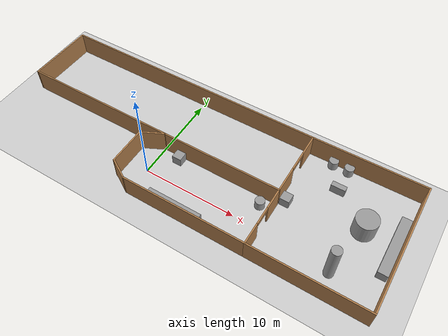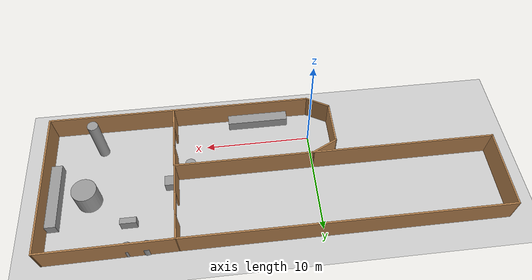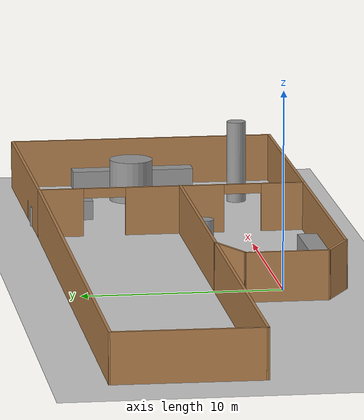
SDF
<sdf version="1.7">
 <world name="default">
  <light name="sun" type="directional">
   <pose>0 0 10 0 -0 0</pose>
   <diffuse>0.8 0.8 0.8 1</diffuse>
   <specular>0.2 0.2 0.2 1</specular>
   <attenuation>
    <range>1000</range>
    <constant>0.9</constant>
    <linear>0.01</linear>
    <quadratic>0.001</quadratic>
   </attenuation>
   <direction>-0.5 0.1 -0.9</direction>
   <spot><inner_angle>0</inner_angle><outer_angle>0</outer_angle><falloff>0</falloff></spot>
  </light>
  <model name="ground_plane">
   <static>1</static>
   <link name="link">
    <collision name="collision">
     <geometry><plane><normal>0 0 1</normal><size>100 100</size></plane></geometry>
     <surface>
      <contact><collide_bitmask>65535</collide_bitmask></contact>
      <friction><ode><mu>100</mu><mu2>50</mu2></ode></friction>
     </surface>
    </collision>
    <visual name="visual">
     <cast_shadows>0</cast_shadows>
     <geometry><plane><normal>0 0 1</normal><size>100 100</size></plane></geometry>
     <material>
      <script><uri>file://media/materials/scripts/gazebo.material</uri><name>Gazebo/Grey</name></script>
     </material>
    </visual>
   </link>
  </model>
  <gravity>0 0 -9.8</gravity>
  <magnetic_field>6e-06 2.3e-05 -4.2e-05</magnetic_field>
  <atmosphere type="adiabatic"/>
  <physics type="ode">
   <max_step_size>0.001</max_step_size>
   <real_time_factor>1</real_time_factor>
   <real_time_update_rate>1000</real_time_update_rate>
  </physics>
  <scene><ambient>0.4 0.4 0.4 1</ambient><background>0.7 0.7 0.7 1</background><shadows>1</shadows></scene>
  <audio><device>default</device></audio>
  <spherical_coordinates>
   <surface_model>EARTH_WGS84</surface_model>
   <latitude_deg>0</latitude_deg>
   <longitude_deg>0</longitude_deg>
   <elevation>0</elevation>
   <heading_deg>0</heading_deg>
  </spherical_coordinates>
  <model name="test_building_2">
   <pose>3.8359 3.82246 0 0 -0 0</pose>
   <link name="Wall_16">
    <collision name="Wall_16_Collision">
     <geometry><box><size>4.25 0.15 2.5</size></box></geometry>
     <pose>0 0 1.25 0 -0 0</pose>
    </collision>
    <visual name="Wall_16_Visual">
     <pose>0 0 1.25 0 -0 0</pose>
     <geometry><box><size>4.25 0.15 2.5</size></box></geometry>
     <material>
      <script><uri>file://media/materials/scripts/gazebo.material</uri><name>Gazebo/Wood</name></script>
      <ambient>1 1 1 1</ambient>
     </material>
     <meta><layer>0</layer></meta>
    </visual>
    <pose>-6.08502 -3.68664 0 0 -0 -1.5708</pose>
   </link>
   <link name="Wall_17">
    <collision name="Wall_17_Collision">
     <geometry><box><size>2.5 0.15 2.5</size></box></geometry>
     <pose>0 0 1.25 0 -0 0</pose>
    </collision>
    <visual name="Wall_17_Visual">
     <pose>0 0 1.25 0 -0 0</pose>
     <geometry><box><size>2.5 0.15 2.5</size></box></geometry>
     <material>
      <script><uri>file://media/materials/scripts/gazebo.material</uri><name>Gazebo/Wood</name></script>
      <ambient>1 1 1 1</ambient>
     </material>
     <meta><layer>0</layer></meta>
    </visual>
    <pose>-5.06743 -6.32414 0 0 -0 -0.523599</pose>
   </link>
   <link name="Wall_18">
    <collision name="Wall_18_Collision">
     <geometry><box><size>13.25 0.15 2.5</size></box></geometry>
     <pose>0 0 1.25 0 -0 0</pose>
    </collision>
    <visual name="Wall_18_Visual">
     <pose>0 0 1.25 0 -0 0</pose>
     <geometry><box><size>13.25 0.15 2.5</size></box></geometry>
     <material>
      <script><uri>file://media/materials/scripts/gazebo.material</uri><name>Gazebo/Wood</name></script>
      <ambient>1 1 1 1</ambient>
     </material>
     <meta><layer>0</layer></meta>
    </visual>
    <pose>2.50014 -6.91164 0 0 -0 0</pose>
   </link>
   <link name="Wall_19">
    <pose>9.05015 -3.70166 0 0 -0 1.5708</pose>
    <visual name="Wall_19_Visual_0">
     <pose>-2.12882 0 1.25 0 -0 0</pose>
     <geometry><box><size>2.31231 0.15 2.5</size></box></geometry>
     <material>
      <script><uri>file://media/materials/scripts/gazebo.material</uri><name>Gazebo/Wood</name></script>
      <ambient>1 1 1 1</ambient>
     </material>
     <meta><layer>0</layer></meta>
    </visual>
    <collision name="Wall_19_Collision_0">
     <geometry><box><size>2.31231 0.15 2.5</size></box></geometry>
     <pose>-2.12882 0 1.25 0 -0 0</pose>
    </collision>
    <visual name="Wall_19_Visual_1">
     <pose>2.12062 0 1.25 0 -0 0</pose>
     <geometry><box><size>2.32871 0.15 2.5</size></box></geometry>
     <material>
      <script><uri>file://media/materials/scripts/gazebo.material</uri><name>Gazebo/Wood</name></script>
      <ambient>1 1 1 1</ambient>
     </material>
     <meta><layer>0</layer></meta>
    </visual>
    <collision name="Wall_19_Collision_1">
     <geometry><box><size>2.32871 0.15 2.5</size></box></geometry>
     <pose>2.12062 0 1.25 0 -0 0</pose>
    </collision>
    <visual name="Wall_19_Visual_2">
     <pose>-0.0082 0 2.25 0 -0 0</pose>
     <geometry><box><size>1.92894 0.15 0.5</size></box></geometry>
     <material>
      <script><uri>file://media/materials/scripts/gazebo.material</uri><name>Gazebo/Wood</name></script>
      <ambient>1 1 1 1</ambient>
     </material>
     <meta><layer>0</layer></meta>
    </visual>
    <collision name="Wall_19_Collision_2">
     <geometry><box><size>1.92894 0.15 0.5</size></box></geometry>
     <pose>-0.0082 0 2.25 0 -0 0</pose>
    </collision>
   </link>
   <link name="Wall_20">
    <collision name="Wall_20_Collision">
     <geometry><box><size>13 0.15 2.5</size></box></geometry>
     <pose>0 0 1.25 0 -0 0</pose>
    </collision>
    <visual name="Wall_20_Visual">
     <pose>0 0 1.25 0 -0 0</pose>
     <geometry><box><size>13 0.15 2.5</size></box></geometry>
     <material>
      <script><uri>file://media/materials/scripts/gazebo.material</uri><name>Gazebo/Wood</name></script>
      <ambient>1 1 1 1</ambient>
     </material>
     <meta><layer>0</layer></meta>
    </visual>
    <pose>2.62514 -0.491676 0 0 -0 3.14159</pose>
   </link>
   <link name="Wall_21">
    <collision name="Wall_21_Collision">
     <geometry><box><size>2.70595 0.15 2.5</size></box></geometry>
     <pose>0 0 1.25 0 -0 0</pose>
    </collision>
    <visual name="Wall_21_Visual">
     <pose>0 0 1.25 0 -0 0</pose>
     <geometry><box><size>2.70595 0.15 2.5</size></box></geometry>
     <material>
      <script><uri>file://media/materials/scripts/gazebo.material</uri><name>Gazebo/Wood</name></script>
      <ambient>1 1 1 1</ambient>
     </material>
     <meta><layer>0</layer></meta>
    </visual>
    <pose>-4.94243 -1.06416 0 0 -0 -2.67711</pose>
   </link>
   <link name="Wall_23">
    <collision name="Wall_23_Collision">
     <geometry><box><size>12 0.15 2.5</size></box></geometry>
     <pose>0 0 1.25 0 -0 0</pose>
    </collision>
    <visual name="Wall_23_Visual">
     <pose>0 0 1.25 0 -0 0</pose>
     <geometry><box><size>12 0.15 2.5</size></box></geometry>
     <material>
      <script><uri>file://media/materials/scripts/gazebo.material</uri><name>Gazebo/Wood</name></script>
      <ambient>1 1 1 1</ambient>
     </material>
     <meta><layer>0</layer></meta>
    </visual>
    <pose>14.9751 -6.91164 0 0 -0 0</pose>
   </link>
   <link name="Wall_24">
    <collision name="Wall_24_Collision">
     <geometry><box><size>14 0.15 2.5</size></box></geometry>
     <pose>0 0 1.25 0 -0 0</pose>
    </collision>
    <visual name="Wall_24_Visual">
     <pose>0 0 1.25 0 -0 0</pose>
     <geometry><box><size>14 0.15 2.5</size></box></geometry>
     <material>
      <script><uri>file://media/materials/scripts/gazebo.material</uri><name>Gazebo/Wood</name></script>
      <ambient>1 1 1 1</ambient>
     </material>
     <meta><layer>0</layer></meta>
    </visual>
    <pose>20.9001 0.013364 0 0 -0 1.5708</pose>
   </link>
   <link name="Wall_25">
    <collision name="Wall_25_Collision">
     <geometry><box><size>12.0006 0.15 2.5</size></box></geometry>
     <pose>0 0 1.25 0 -0 0</pose>
    </collision>
    <visual name="Wall_25_Visual">
     <pose>0 0 1.25 0 -0 0</pose>
     <geometry><box><size>12.0006 0.15 2.5</size></box></geometry>
     <material>
      <script><uri>file://media/materials/scripts/gazebo.material</uri><name>Gazebo/Wood</name></script>
      <ambient>1 1 1 1</ambient>
     </material>
     <meta><layer>0</layer></meta>
    </visual>
    <pose>14.9751 6.88085 0 0 -0 -3.13189</pose>
   </link>
   <link name="Wall_26">
    <pose>9.05015 3.14834 0 0 -0 -1.5708</pose>
    <visual name="Wall_26_Visual_0">
     <pose>-2.56985 0 1.25 0 -0 0</pose>
     <geometry><box><size>2.36031 0.15 2.5</size></box></geometry>
     <material>
      <script><uri>file://media/materials/scripts/gazebo.material</uri><name>Gazebo/Wood</name></script>
      <ambient>1 1 1 1</ambient>
     </material>
     <meta><layer>0</layer></meta>
    </visual>
    <collision name="Wall_26_Collision_0">
     <geometry><box><size>2.36031 0.15 2.5</size></box></geometry>
     <pose>-2.56985 0 1.25 0 -0 0</pose>
    </collision>
    <visual name="Wall_26_Visual_1">
     <pose>2.26654 0 1.25 0 -0 0</pose>
     <geometry><box><size>2.96692 0.15 2.5</size></box></geometry>
     <material>
      <script><uri>file://media/materials/scripts/gazebo.material</uri><name>Gazebo/Wood</name></script>
      <ambient>1 1 1 1</ambient>
     </material>
     <meta><layer>0</layer></meta>
    </visual>
    <collision name="Wall_26_Collision_1">
     <geometry><box><size>2.96692 0.15 2.5</size></box></geometry>
     <pose>2.26654 0 1.25 0 -0 0</pose>
    </collision>
    <visual name="Wall_26_Visual_2">
     <pose>-0.303308 0 2.25 0 -0 0</pose>
     <geometry><box><size>2.17277 0.15 0.5</size></box></geometry>
     <material>
      <script><uri>file://media/materials/scripts/gazebo.material</uri><name>Gazebo/Wood</name></script>
      <ambient>1 1 1 1</ambient>
     </material>
     <meta><layer>0</layer></meta>
    </visual>
    <collision name="Wall_26_Collision_2">
     <geometry><box><size>2.17277 0.15 0.5</size></box></geometry>
     <pose>-0.303308 0 2.25 0 -0 0</pose>
    </collision>
   </link>
   <link name="Wall_28">
    <collision name="Wall_28_Collision">
     <geometry><box><size>30 0.15 2.5</size></box></geometry>
     <pose>0 0 1.25 0 -0 0</pose>
    </collision>
    <visual name="Wall_28_Visual">
     <pose>0 0 1.25 0 -0 0</pose>
     <geometry><box><size>30 0.15 2.5</size></box></geometry>
     <material>
      <script><uri>file://media/materials/scripts/gazebo.material</uri><name>Gazebo/Wood</name></script>
      <ambient>1 1 1 1</ambient>
     </material>
     <meta><layer>0</layer></meta>
    </visual>
    <pose>-5.87485 6.82334 0 0 -0 3.14159</pose>
   </link>
   <link name="Wall_29">
    <collision name="Wall_29_Collision">
     <geometry><box><size>7.4657 0.15 2.5</size></box></geometry>
     <pose>0 0 1.25 0 -0 0</pose>
    </collision>
    <visual name="Wall_29_Visual">
     <pose>0 0 1.25 0 -0 0</pose>
     <geometry><box><size>7.4657 0.15 2.5</size></box></geometry>
     <material>
      <script><uri>file://media/materials/scripts/gazebo.material</uri><name>Gazebo/Wood</name></script>
      <ambient>1 1 1 1</ambient>
     </material>
     <meta><layer>0</layer></meta>
    </visual>
    <pose>-20.8499 3.16583 0 0 -0 -1.58447</pose>
   </link>
   <link name="Wall_31">
    <collision name="Wall_31_Collision">
     <geometry><box><size>17.25 0.15 2.5</size></box></geometry>
     <pose>0 0 1.25 0 -0 0</pose>
    </collision>
    <visual name="Wall_31_Visual">
     <pose>0 0 1.25 0 -0 0</pose>
     <geometry><box><size>17.25 0.15 2.5</size></box></geometry>
     <material>
      <script><uri>file://media/materials/scripts/gazebo.material</uri><name>Gazebo/Wood</name></script>
      <ambient>1 1 1 1</ambient>
     </material>
     <meta><layer>0</layer></meta>
    </visual>
    <pose>-12.3499 -0.491676 0 0 -0 3.14159</pose>
   </link>
   <static>1</static>
  </model>
  <model name="unit_box">
   <pose>2.03816 2.7558 0.499999 -2e-06 -0 -3e-06</pose>
   <link name="link">
    <inertial>
     <mass>1</mass>
     <inertia>
      <ixx>0.166667</ixx>
      <ixy>0</ixy>
      <ixz>0</ixz>
      <iyy>0.166667</iyy>
      <iyz>0</iyz>
      <izz>0.166667</izz>
     </inertia>
    </inertial>
    <collision name="collision"><geometry><box><size>1 1 1</size></box></geometry></collision>
    <visual name="visual">
     <geometry><box><size>1 1 1</size></box></geometry>
     <material>
      <script><name>Gazebo/Grey</name><uri>file://media/materials/scripts/gazebo.material</uri></script>
     </material>
    </visual>
   </link>
  </model>
  <model name="unit_box_0">
   <pose>4.7588 -2.43664 0.495823 0 0.001439 8.8e-05</pose>
   <link name="link">
    <inertial>
     <mass>1</mass>
     <inertia>
      <ixx>0.166667</ixx>
      <ixy>0</ixy>
      <ixz>0</ixz>
      <iyy>0.166667</iyy>
      <iyz>0</iyz>
      <izz>0.166667</izz>
     </inertia>
    </inertial>
    <collision name="collision"><geometry><box><size>5.80962 1 1</size></box></geometry></collision>
    <visual name="visual">
     <geometry><box><size>5.80962 1 1</size></box></geometry>
     <material>
      <script><name>Gazebo/Grey</name><uri>file://media/materials/scripts/gazebo.material</uri></script>
     </material>
    </visual>
   </link>
  </model>
  <model name="unit_cylinder">
   <pose>11.563 2.2884 0.499998 3e-06 -2e-06 0</pose>
   <link name="link">
    <inertial>
     <mass>1</mass>
     <inertia><ixx>0.145833</ixx><ixy>0</ixy><ixz>0</ixz><iyy>0.145833</iyy><iyz>0</iyz><izz>0.125</izz></inertia>
    </inertial>
    <collision name="collision">
     <geometry><cylinder><radius>0.5</radius><length>1</length></cylinder></geometry>
    </collision>
    <visual name="visual">
     <geometry><cylinder><radius>0.5</radius><length>1</length></cylinder></geometry>
     <material>
      <script><name>Gazebo/Grey</name><uri>file://media/materials/scripts/gazebo.material</uri></script>
     </material>
    </visual>
   </link>
  </model>
  <model name="unit_box_1">
   <pose>17.2518 7.70472 0.499999 -3e-06 -0 2e-06</pose>
   <link name="link">
    <inertial>
     <mass>1</mass>
     <inertia>
      <ixx>0.166667</ixx>
      <ixy>0</ixy>
      <ixz>0</ixz>
      <iyy>0.166667</iyy>
      <iyz>0</iyz>
      <izz>0.166667</izz>
     </inertia>
    </inertial>
    <collision name="collision"><geometry><box><size>1.47832 0.560851 0.999999</size></box></geometry></collision>
    <visual name="visual">
     <geometry><box><size>1.47832 0.560851 0.999999</size></box></geometry>
     <material>
      <script><name>Gazebo/Grey</name><uri>file://media/materials/scripts/gazebo.material</uri></script>
     </material>
    </visual>
   </link>
  </model>
  <model name="unit_box_2">
   <pose>24.073 4.42725 0.493417 -1.57056 1.56875 -1.5708</pose>
   <link name="link">
    <inertial>
     <mass>1</mass>
     <inertia>
      <ixx>0.166667</ixx>
      <ixy>0</ixy>
      <ixz>0</ixz>
      <iyy>0.166667</iyy>
      <iyz>0</iyz>
      <izz>0.166667</izz>
     </inertia>
    </inertial>
    <collision name="collision"><geometry><box><size>1 6.43885 1</size></box></geometry></collision>
    <visual name="visual">
     <geometry><box><size>1 6.43885 1</size></box></geometry>
     <material>
      <script><name>Gazebo/Grey</name><uri>file://media/materials/scripts/gazebo.material</uri></script>
     </material>
    </visual>
   </link>
  </model>
  <model name="unit_cylinder_0">
   <pose>15.5938 10.3136 0.499992 -3e-06 3e-06 0</pose>
   <link name="link">
    <inertial>
     <mass>1</mass>
     <inertia><ixx>0.145833</ixx><ixy>0</ixy><ixz>0</ixz><iyy>0.145833</iyy><iyz>0</iyz><izz>0.125</izz></inertia>
    </inertial>
    <collision name="collision">
     <geometry><cylinder><radius>0.5</radius><length>1</length></cylinder></geometry>
    </collision>
    <visual name="visual">
     <geometry><cylinder><radius>0.5</radius><length>1</length></cylinder></geometry>
     <material>
      <script><name>Gazebo/Grey</name><uri>file://media/materials/scripts/gazebo.material</uri></script>
     </material>
    </visual>
   </link>
  </model>
  <model name="unit_cylinder_1">
   <pose>17.2688 10.2793 0.499998 3e-06 -3e-06 0</pose>
   <link name="link">
    <inertial>
     <mass>1</mass>
     <inertia><ixx>0.145833</ixx><ixy>0</ixy><ixz>0</ixz><iyy>0.145833</iyy><iyz>0</iyz><izz>0.125</izz></inertia>
    </inertial>
    <collision name="collision">
     <geometry><cylinder><radius>0.5</radius><length>1</length></cylinder></geometry>
    </collision>
    <visual name="visual">
     <geometry><cylinder><radius>0.5</radius><length>1</length></cylinder></geometry>
     <material>
      <script><name>Gazebo/Grey</name><uri>file://media/materials/scripts/gazebo.material</uri></script>
     </material>
    </visual>
   </link>
  </model>
  <model name="unit_cylinder_2">
   <pose>20.0038 -0.606694 2.13928 -0 -0 -0.000197</pose>
   <link name="link">
    <inertial>
     <mass>1</mass>
     <inertia><ixx>0.145833</ixx><ixy>0</ixy><ixz>0</ixz><iyy>0.145833</iyy><iyz>0</iyz><izz>0.125</izz></inertia>
    </inertial>
    <collision name="collision">
     <geometry><cylinder><radius>0.5</radius><length>4.27856</length></cylinder></geometry>
    </collision>
    <visual name="visual">
     <geometry><cylinder><radius>0.5</radius><length>4.27856</length></cylinder></geometry>
     <material>
      <script><name>Gazebo/Grey</name><uri>file://media/materials/scripts/gazebo.material</uri></script>
     </material>
    </visual>
   </link>
  </model>
  <model name="unit_cylinder_3">
   <pose>20.9936 4.87141 1.09408 0 -0 -0.044151</pose>
   <link name="link">
    <inertial>
     <mass>1</mass>
     <inertia><ixx>0.145833</ixx><ixy>0</ixy><ixz>0</ixz><iyy>0.145833</iyy><iyz>0</iyz><izz>0.125</izz></inertia>
    </inertial>
    <collision name="collision">
     <geometry><cylinder><radius>1.13188</radius><length>2.18816</length></cylinder></geometry>
    </collision>
    <visual name="visual">
     <geometry><cylinder><radius>1.13188</radius><length>2.18816</length></cylinder></geometry>
     <material>
      <script><name>Gazebo/Grey</name><uri>file://media/materials/scripts/gazebo.material</uri></script>
     </material>
    </visual>
   </link>
  </model>
  <model name="unit_box_3">
   <pose>13.5022 3.96655 0.499995 0 1e-05 0</pose>
   <link name="link">
    <inertial>
     <mass>1</mass>
     <inertia>
      <ixx>0.166667</ixx>
      <ixy>0</ixy>
      <ixz>0</ixz>
      <iyy>0.166667</iyy>
      <iyz>0</iyz>
      <izz>0.166667</izz>
     </inertia>
    </inertial>
    <collision name="collision"><geometry><box><size>1 1 1</size></box></geometry></collision>
    <visual name="visual">
     <geometry><box><size>1 1 1</size></box></geometry>
     <material>
      <script><name>Gazebo/Grey</name><uri>file://media/materials/scripts/gazebo.material</uri></script>
     </material>
    </visual>
   </link>
  </model>
 </world>
</sdf>
